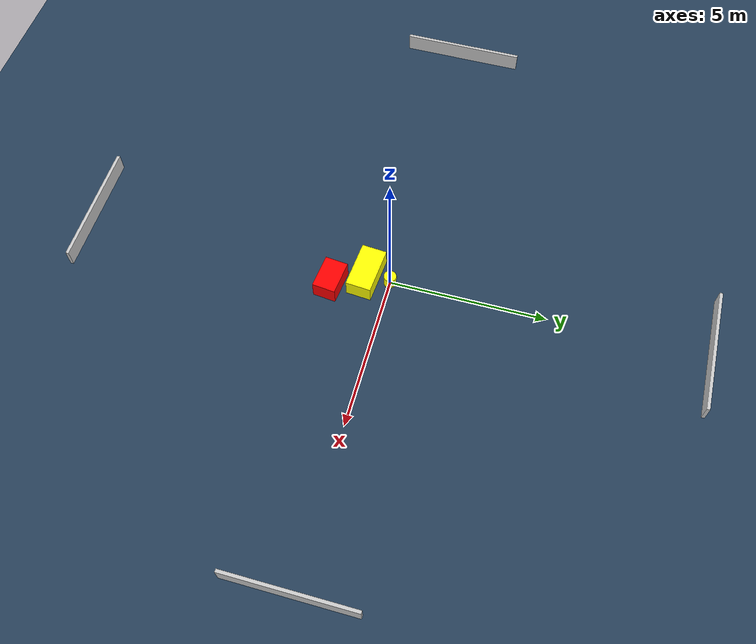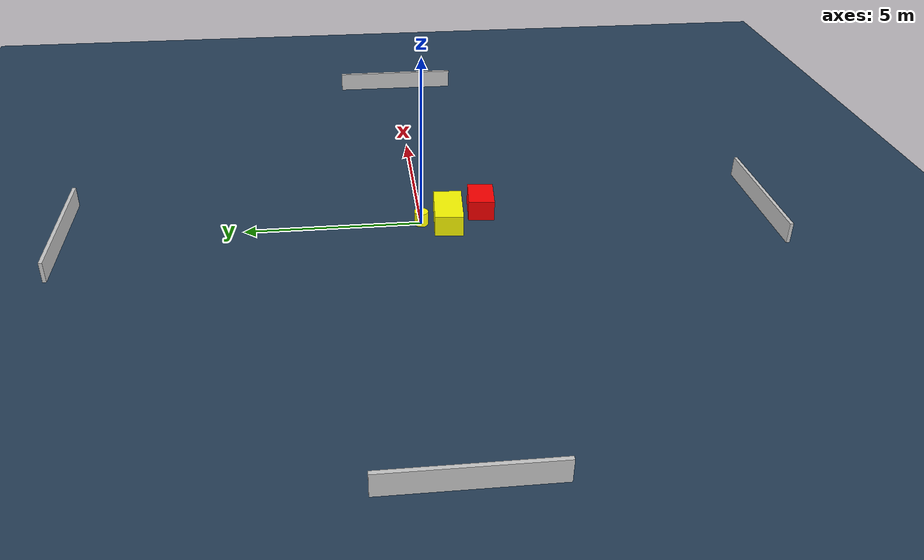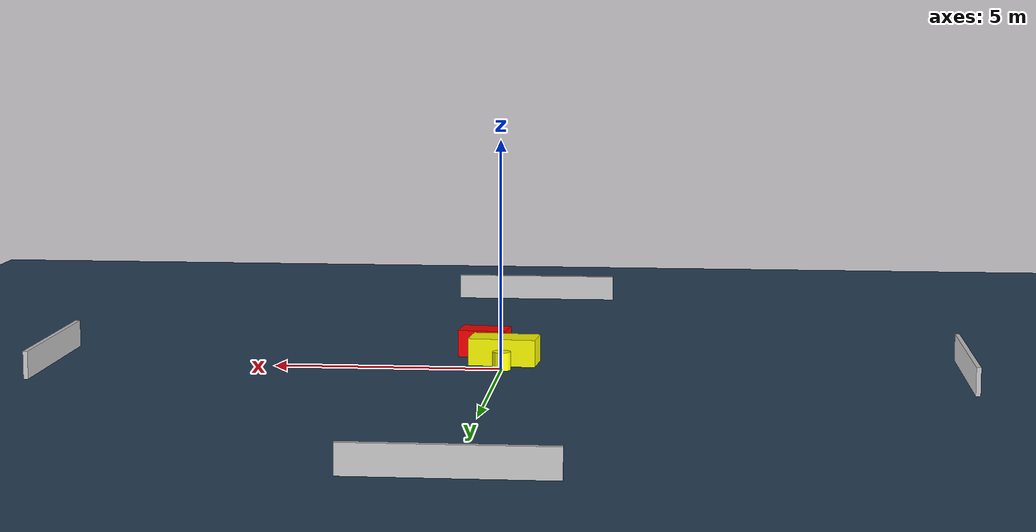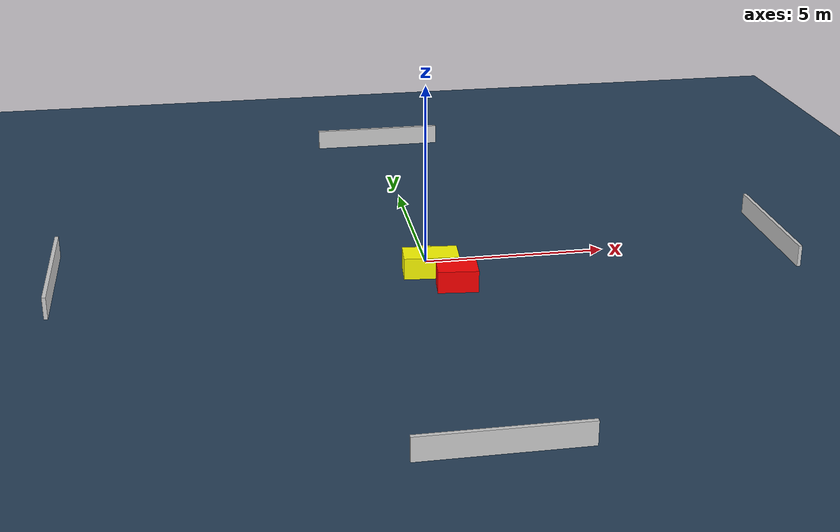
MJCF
<?xml version="1.0" ?>
<mujoco model="generated_environment">
  <option timestep="0.01" integrator="RK4" cone="elliptic"/>
  <default>
    <geom density="1"/>
  </default>
  <asset>
    <texture builtin="gradient" height="3072" name="skybox" rgb1="0.3 0.5 0.7" rgb2="0 0 0" type="skybox" width="512"/>
    <texture builtin="checker" height="300" name="groundplane" rgb1="0.2 0.3 0.4" rgb2="0.1 0.2 0.3" type="2d" width="300"/>
    <material name="groundplane" reflectance="0.2" texrepeat="5 5" texture="groundplane"/>
  </asset>
  <worldbody>
    <light dir="0 0 -1" directional="true" pos="0 0 1.5"/>
    <geom condim="3" friction="0.5 0.005 0.001" material="groundplane" name="floor" pos="0 0 0" size="0 0 0.05" type="plane"/>
    <body name="walls">
      <geom name="wall_1" condim="4" pos="-10.0 0.0 0.3" rgba="0.800000011920929 0.800000011920929 0.800000011920929 1.0" size="0.05 2.0 0.3" type="box"/>
      <geom name="wall_2" condim="4" pos="10.0 0.0 0.3" rgba="0.800000011920929 0.800000011920929 0.800000011920929 1.0" size="0.05 2.0 0.3" type="box"/>
      <geom name="wall_3" condim="4" pos="0.0 -10.0 0.3" rgba="0.800000011920929 0.800000011920929 0.800000011920929 1.0" size="2.0 0.05 0.3" type="box"/>
      <geom name="wall_4" condim="4" pos="0.0 10.0 0.3" rgba="0.800000011920929 0.800000011920929 0.800000011920929 1.0" size="2.0 0.05 0.3" type="box"/>
    </body>
    <body name="robot">
      <joint name="joint_x" type="slide" pos="0 0 0" axis="1 0 0"/>
      <joint name="joint_y" type="slide" pos="0 0 0" axis="0 1 0"/>
      <geom name="robot" type="cylinder" pos="0.0 0.0 0.2" size="0.2 0.2 0.0" mass="5.0" friction="1.0 0.005 0.0001" condim="4" rgba="1.0 1.0 0.0 1.0"/>
    </body>
    <body name="obstacle_1_movable">
      <geom name="obstacle_1_movable" condim="4" pos="0.0036782512864234067 -0.7697942686501199 0.3" euler="0 0 355.4678880544355" friction="0.0 0.005 0.001" rgba="1.0 1.0 0.0 1.0" size="0.7434726287657418 0.40155004647246795 0.3" type="box" mass="0.1"/>
      <joint type="free"/>
    </body>
    <body name="obstacle_2_static">
      <geom name="obstacle_2_static" condim="4" pos="0.5453024569475302 -1.7852630996310876 0.3" euler="0 0 174.25301323453158" friction="0.0 0.005 0.001" rgba="1.0 0.0 0.0 1.0" size="0.539853953363604 0.36974023734840444 0.3" type="box"/>
    </body>
  </worldbody>
  <actuator>
    <motor name="actuator_x" joint="joint_x" gear="1" ctrlrange="-1 1"/>
    <motor name="actuator_y" joint="joint_y" gear="1" ctrlrange="-1 1"/>
  </actuator>
</mujoco>
